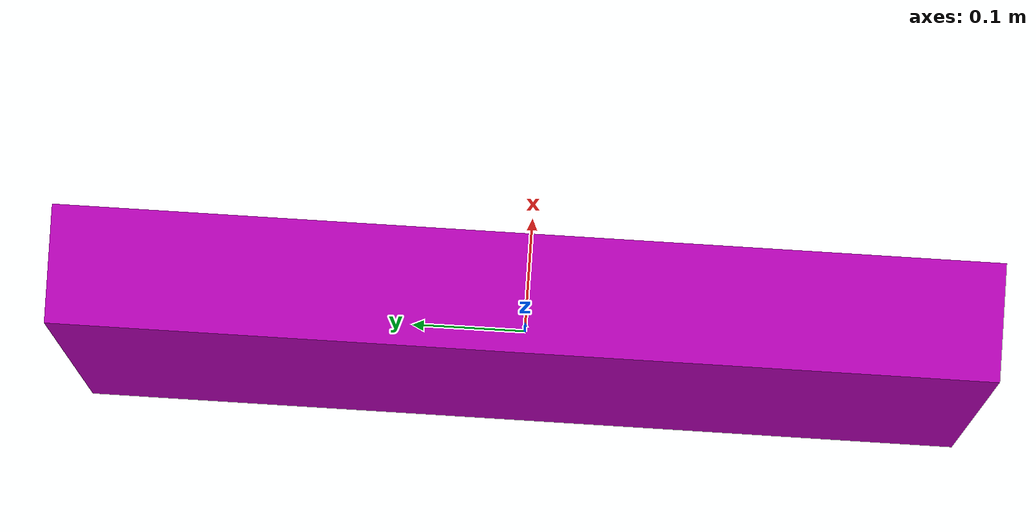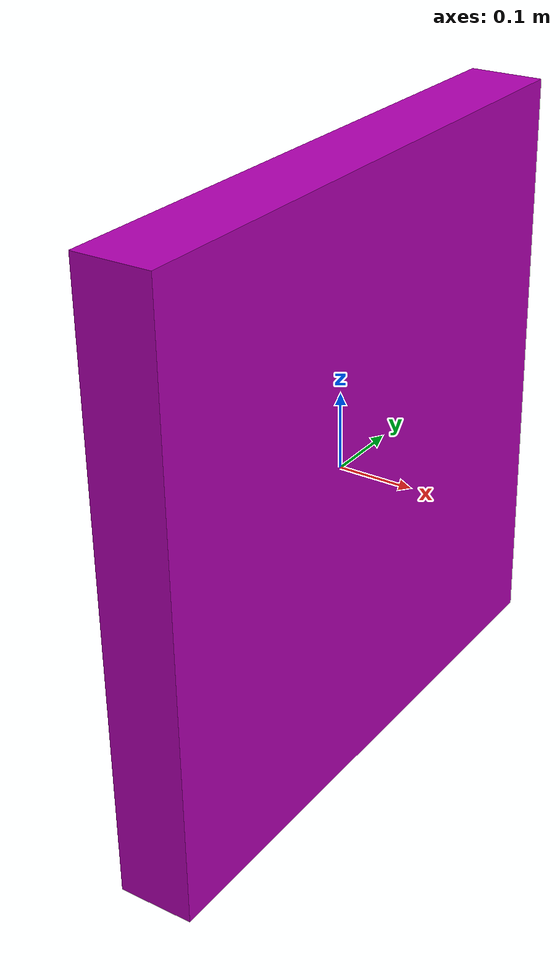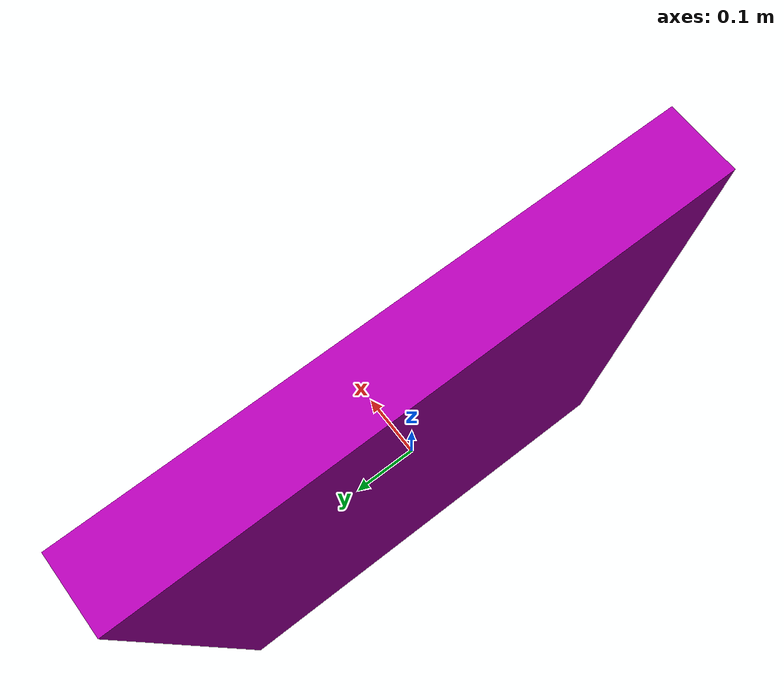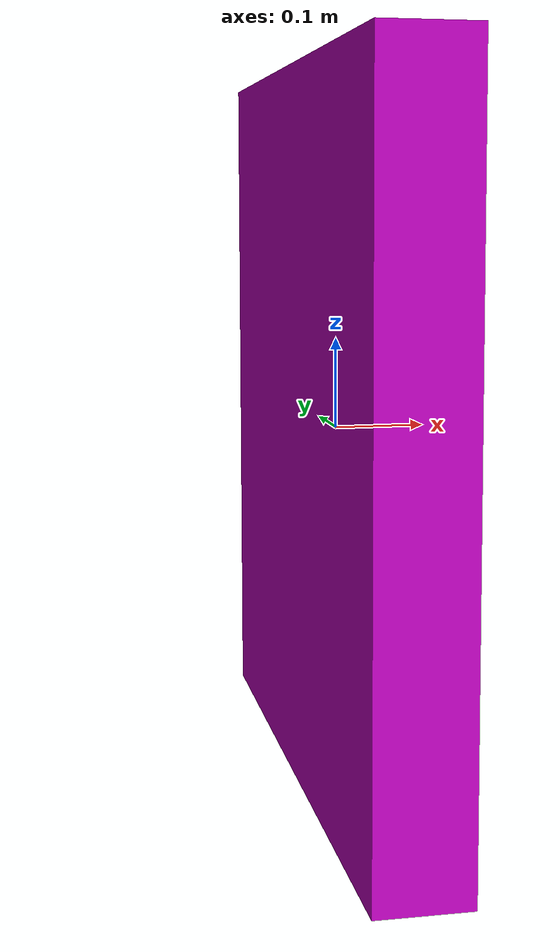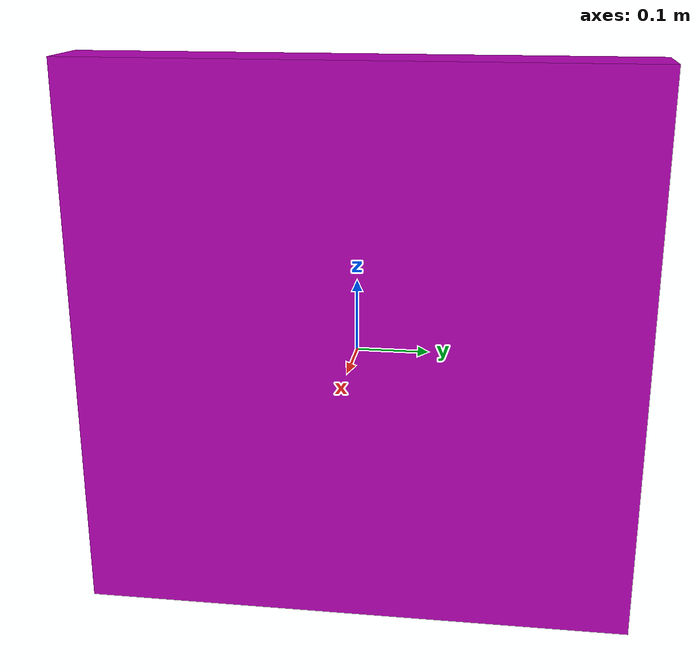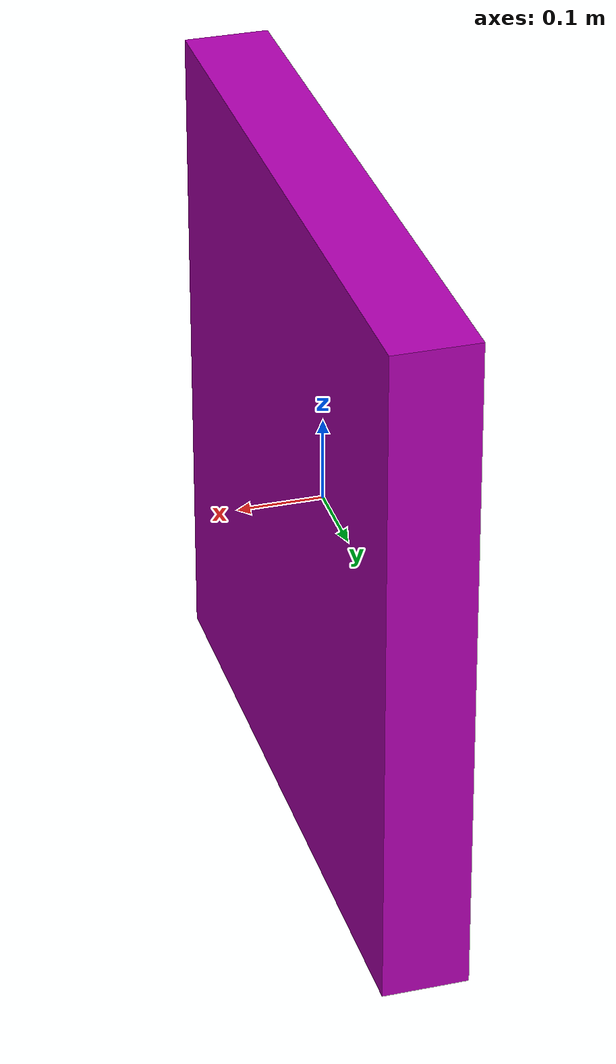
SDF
<?xml version="1.0"?>
<!-- Copyright 2026 Hasan Ahmed; SPDX-License-Identifier: Apache-2.0 -->
<sdf version="1.10">
  <model name="phase3_contact_control_wall">
    <static>true</static>
    <link name="link">
      <collision name="collision">
        <geometry>
          <box><size>0.10 0.80 0.80</size></box>
        </geometry>
      </collision>
      <visual name="visual">
        <geometry>
          <box><size>0.10 0.80 0.80</size></box>
        </geometry>
        <material>
          <ambient>0.70 0.00 0.70 1</ambient>
          <diffuse>0.70 0.00 0.70 1</diffuse>
        </material>
      </visual>
    </link>
    <plugin filename="gz-sim-pose-publisher-system"
            name="gz::sim::systems::PosePublisher">
      <publish_link_pose>false</publish_link_pose>
      <publish_collision_pose>false</publish_collision_pose>
      <publish_visual_pose>false</publish_visual_pose>
      <publish_sensor_pose>false</publish_sensor_pose>
      <publish_nested_model_pose>false</publish_nested_model_pose>
      <publish_model_pose>true</publish_model_pose>
      <use_pose_vector_msg>true</use_pose_vector_msg>
      <update_frequency>10</update_frequency>
      <static_publisher>false</static_publisher>
    </plugin>
  </model>
</sdf>
